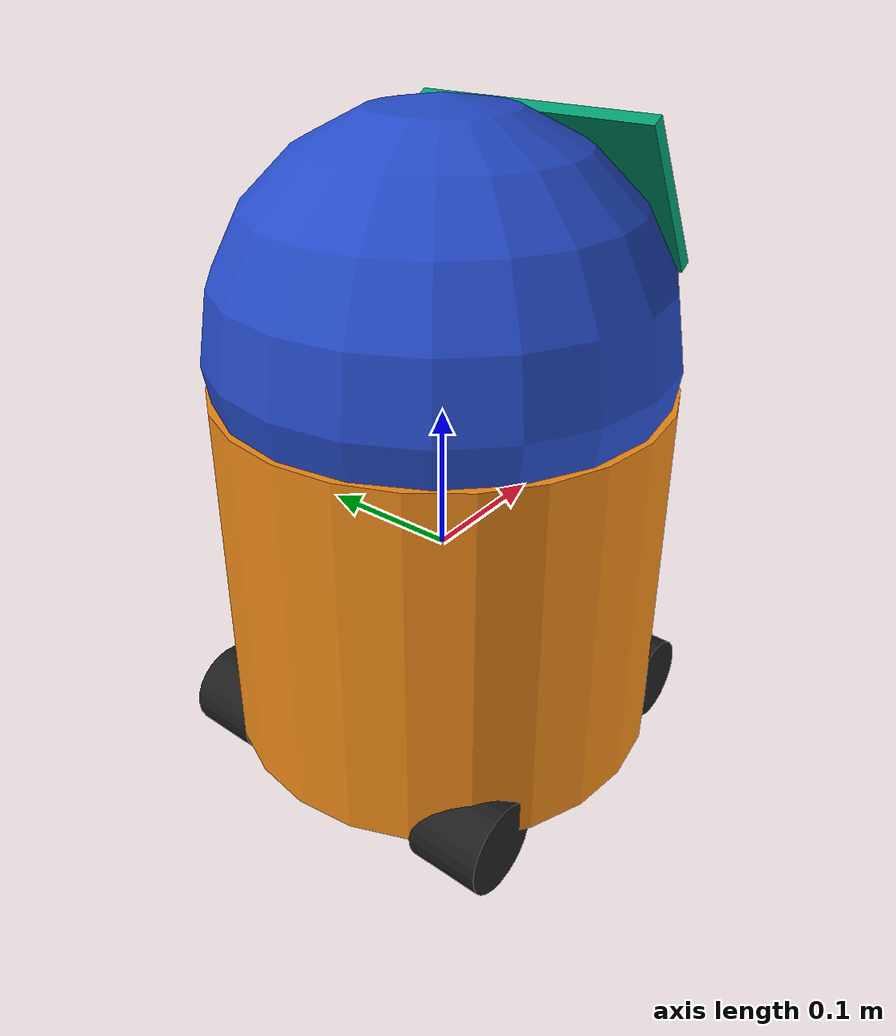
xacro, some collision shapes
<?xml version="1.0"?>
<robot xmlns:xacro="http://www.ros.org/wiki/xacro" name="mbot">
<xacro:property name="base_radius" value=".15" />
<xacro:property name="base_length" value=".25" />
<xacro:property name="screen_length" value=".18" />
<xacro:property name="screen_width" value=".12" />
<xacro:property name="screen_thickness" value=".01" />
<xacro:property name="wheel_length" value=".05" />
<xacro:property name="wheel_radius" value=".03" />
<xacro:property name="wheel_mass" value="0.5" />
<xacro:property name="screen_mass" value="0.2" />
<xacro:property name="base_mass" value="2" />
<xacro:property name="head_mass" value="1" />
<xacro:property name="inertia_head" value="0.018" />
<xacro:property name="inertia_base" value="0.2364" />
<xacro:property name="inertia_wheels" value="0.0002" />
<xacro:property name="camera_link" value="0.025" />
<xacro:property name="imu_link" value="0.025" />
<xacro:property name="hand_length" value="0.2" />
<xacro:property name="hand_thickness" value="0.1" />
<xacro:property name="hand_mass" value="0.05" />

  <link name="base_link">
    <visual>
      <geometry>
        <cylinder length="${base_length}" radius="${base_radius}"/>
      </geometry>
    </visual>
    <collision>
      <geometry>
        <cylinder length="${base_length}" radius="${base_radius}"/>
      </geometry>
    </collision>
    <inertial>
      <mass value="${base_mass}"/>
      <inertia ixx="${inertia_base}" ixy="0.0" ixz="0.0" iyy="${inertia_base}" iyz="0.0" izz="${inertia_base}"/>
    </inertial>
  </link>

  <gazebo>
    <plugin name="ground_truth" filename="libgazebo_ros_p3d.so">
      <alwaysOn>true</alwaysOn>
      <updateRate>50.0</updateRate>
      <bodyName>base_link</bodyName>
      <topicName>ground_truth/state</topicName>
      <gaussianNoise>0.00</gaussianNoise>
      <frameName>map</frameName>
      <xyzOffsets>0 0 0</xyzOffsets>
      <rpyOffsets>0 0 0</rpyOffsets>
    </plugin>
  </gazebo>

  <link name="head">
    <visual>
      <geometry>
        <sphere radius="${base_radius}"/>
      </geometry>
    </visual>
    <collision>
      <geometry>
        <sphere radius="${base_radius}"/>
      </geometry>
    </collision>
    <inertial>
      <mass value="${head_mass}"/>
      <inertia ixx="${inertia_head}" ixy="0.0" ixz="0.0" iyy="${inertia_head}" iyz="0.0" izz="${inertia_head}"/>
    </inertial>
  </link>

  <joint name="head_swivel" type="fixed">
    <parent link="base_link"/>
    <child link="head"/>
    <origin xyz="0 0 0.15"/>
    <axis xyz="0 0 1" />
  </joint>

  <link name="box">
    <visual>
      <geometry>
        <box size="${screen_length} ${screen_thickness} ${screen_width}"/>
      </geometry>
      <origin rpy="-0.5235 0 1.57" xyz="0 0 0"/>
    </visual>
    <collision>
      <geometry>
        <box size="${screen_length} ${screen_thickness} ${screen_width}"/>
      </geometry>
    </collision>
    <inertial>
      <mass value="${screen_mass}"/>
      <inertia ixx="0.00000" ixy="0.0" ixz="0.0" iyy="0.00000" iyz="0.0" izz="0.00000"/>
    </inertial>
  </link>

  <joint name="tobox" type="fixed">
    <parent link="head"/>
    <child link="box"/>
    <origin xyz="0.12 0 0.08"/>
  </joint>

  <link name="right_front_wheel">
    <visual>
      <geometry>
        <cylinder length="${wheel_length}" radius="${wheel_radius}"/>
      </geometry>
    </visual>
    <collision>
      <geometry>
        <cylinder length="${wheel_length}" radius="${wheel_radius}"/>
      </geometry>
    </collision>
    <inertial>
      <mass value="${wheel_mass}"/>
      <inertia ixx="${inertia_wheels}" ixy="0.0" ixz="0.0" iyy="${inertia_wheels}" iyz="0.0" izz="${inertia_wheels}"/>
    </inertial>
  </link>

  <joint name="right_front_wheel_joint" type="continuous">
    <parent link="base_link"/>
    <child link="right_front_wheel"/>
    <axis xyz="0 0 1" />
    <origin rpy="-1.57 0 0" xyz="0.1 -0.1 -0.125"/>
  </joint>

  <link name="right_back_wheel">
    <visual>
      <geometry>
        <cylinder length="${wheel_length}" radius="${wheel_radius}"/>
      </geometry>
    </visual>
    <collision>
      <geometry>
        <cylinder length="${wheel_length}" radius="${wheel_radius}"/>
      </geometry>
    </collision>
    <inertial>
      <mass value="${wheel_mass}"/>
      <inertia ixx="${inertia_wheels}" ixy="0.0" ixz="0.0" iyy="${inertia_wheels}" iyz="0.0" izz="${inertia_wheels}"/>
    </inertial>
  </link>

  <joint name="right_back_wheel_joint" type="continuous">
    <parent link="base_link"/>
    <child link="right_back_wheel"/>
    <origin rpy="-1.57 0 0" xyz="-0.1 -0.1 -0.125"/>
    <axis xyz="0 0 1" />
  </joint>

  <link name="left_front_wheel">
    <visual>
      <geometry>
        <cylinder length="${wheel_length}" radius="${wheel_radius}"/>
      </geometry>
    </visual>
    <collision>
      <geometry>
        <cylinder length="${wheel_length}" radius="${wheel_radius}"/>
      </geometry>
    </collision>
    <inertial>
      <mass value="${wheel_mass}"/>
      <inertia ixx="${inertia_wheels}" ixy="0.0" ixz="0.0" iyy="${inertia_wheels}" iyz="0.0" izz="${inertia_wheels}"/>
    </inertial>
  </link>

  <joint name="left_front_wheel_joint" type="continuous">
    <parent link="base_link"/>
    <child link="left_front_wheel"/>
    <origin rpy="-1.57 0 0" xyz="0.1 0.1 -0.125"/>
    <axis xyz="0 0 1" />
  </joint>

  <link name="left_back_wheel">
    <visual>
      <geometry>
        <cylinder length="${wheel_length}" radius="${wheel_radius}"/>
      </geometry>
    </visual>
    <collision>
      <geometry>
        <cylinder length="${wheel_length}" radius="${wheel_radius}"/>
      </geometry>
    </collision>
    <inertial>
      <mass value="${wheel_mass}"/>
      <inertia ixx="${inertia_wheels}" ixy="0.0" ixz="0.0" iyy="${inertia_wheels}" iyz="0.0" izz="${inertia_wheels}"/>
    </inertial>
  </link>

  <joint name="left_back_wheel_joint" type="continuous">
    <parent link="base_link"/>
    <child link="left_back_wheel"/>
    <origin rpy="-1.57 0 0" xyz="-0.1 0.1 -0.125"/>
    <axis xyz="0 0 1" />
  </joint>

  <!-- Hokuyo Laser -->
  <link name="hokuyo_link">
    <collision>
      <origin xyz="0 0 0" rpy="0 0 0"/>
      <geometry>
    <box size="0.1 0.1 0.1"/>
      </geometry>
    </collision>

    <visual>
      <origin xyz="0 0 0" rpy="0 0 0"/>
      <geometry>
        <mesh filename="package://mbot_description/meshes/hokuyo.dae"/>
      </geometry>
    </visual>

    <inertial>
      <mass value="1e-5" />
      <origin xyz="0 0 0" rpy="0 0 0"/>
      <inertia ixx="1e-6" ixy="0" ixz="0" iyy="1e-6" iyz="0" izz="1e-6" />
    </inertial>
  </link>

  <joint name="hokuyo_joint" type="fixed">
    <axis xyz="0 0 1" />
    <origin xyz="0.15 0 -0.15" rpy="0 0 0"/>
    <parent link="head"/>
    <child link="hokuyo_link"/>
  </joint>

  <!-- hokuyo -->
  <gazebo reference="hokuyo_link">
    <sensor type="ray" name="head_hokuyo_sensor">
      <pose>0 0 0 0 0 0</pose>
      <visualize>true</visualize>
      <update_rate>20</update_rate>
      <ray>
        <scan>
          <horizontal>
            <samples>720</samples>
            <resolution>1</resolution>
            <min_angle>1.57</min_angle>
            <max_angle>-1.57</max_angle>
          </horizontal>
        </scan>
        <range>
          <min>0.1</min>
          <max>5.0</max>
          <resolution>0.1</resolution>
        </range>
        <noise>
          <type>gaussian</type>
          <mean>0.0</mean>
          <stddev>0.01</stddev>
        </noise>
      </ray>
      <plugin name="gazebo_ros_head_hokuyo_controller" filename="libgazebo_ros_laser.so">
        <topicName>/mbot/laser/scan</topicName>
        <frameName>hokuyo_link</frameName>
      </plugin>
    </sensor>
  </gazebo>

  <!-- Camera -->
  <link name="camera_link">
    <collision>
      <origin xyz="0 0 0" rpy="0 0 0"/>
      <geometry>
    <box size="${camera_link} ${camera_link} ${camera_link}"/>
      </geometry>
    </collision>

    <visual>
      <origin xyz="0 0 0" rpy="0 0 0"/>
      <geometry>
    <box size="${camera_link} ${camera_link} ${camera_link}"/>
      </geometry>
      <material name="red"/>
    </visual>

    <inertial>
      <mass value="1e-5" />
      <origin xyz="0 0 0" rpy="0 0 0"/>
      <inertia ixx="1e-6" ixy="0" ixz="0" iyy="1e-6" iyz="0" izz="1e-6" />
    </inertial>
  </link>

  <joint name="camera_joint" type="fixed">
    <origin xyz="0.15 0.0 -0.05" rpy="0 0 0"/>
    <axis xyz="0 0 1" />
    <parent link="head"/>
    <child link="camera_link"/>
  </joint>

  <!-- camera -->
  <gazebo reference="camera_link">

    <sensor type="depth" name="depth_camera">
      <update_rate>20</update_rate>
      <camera>
        <horizontal_fov>1.047198</horizontal_fov>
        <image>
          <width>640</width>
          <height>480</height>
          <format>R8G8B8</format>
        </image>
        <clip>
          <near>0.05</near>
          <far>3</far>
        </clip>
      </camera>

      <plugin name="camera_plugin" filename="libgazebo_ros_openni_kinect.so">
        <baseline>0.2</baseline>
        <alwaysOn>true</alwaysOn>
        <updateRate>0.0</updateRate>
        <cameraName>/camera_ir</cameraName>
        <imageTopicName>/camera/depth/image_raw</imageTopicName>
        <cameraInfoTopicName>/camera/depth/info</cameraInfoTopicName>
        <depthImageTopicName>/camera/depth/image_depth</depthImageTopicName>
        <depthImageInfoTopicName>/camera/depth/info_depth</depthImageInfoTopicName>
        <pointCloudTopicName>/camera/depth/points</pointCloudTopicName>
        <frameName>camera_link</frameName>
        <pointCloudCutoff>0.05</pointCloudCutoff>
        <distortionK1>0</distortionK1>
        <distortionK2>0</distortionK2>
        <distortionK3>0</distortionK3>
        <distortionT1>0</distortionT1>
        <distortionT2>0</distortionT2>
        <CxPrime>0</CxPrime>
        <Cx>0</Cx>
        <Cy>0</Cy>
        <focalLength>0</focalLength>
        <hackBaseline>0</hackBaseline>
      </plugin>
    </sensor>

    <sensor type="camera" name="rgb_camera">
      <update_rate>20.0</update_rate>
      <camera>
        <horizontal_fov>1.3962634</horizontal_fov>
        <image>
          <width>640</width>
          <height>360</height>
          <format>R8G8B8</format>
        </image>
        <clip>
          <near>0.02</near>
          <far>300</far>
        </clip>
        <noise>
          <type>gaussian</type>
          <mean>0.0</mean>
          <stddev>0.007</stddev>
        </noise>
      </camera>
      <plugin name="camera_controller" filename="libgazebo_ros_camera.so">
        <alwaysOn>true</alwaysOn>
        <updateRate>0.0</updateRate>
        <cameraName>/camera_rgb</cameraName>
        <imageTopicName>/camera/rgb/image_raw</imageTopicName>
        <cameraInfoTopicName>/camera/rgb/info</cameraInfoTopicName>
        <frameName>camera_link</frameName>
        <hackBaseline>0.07</hackBaseline>
        <distortionK1>0.0</distortionK1>
        <distortionK2>0.0</distortionK2>
        <distortionK3>0.0</distortionK3>
        <distortionT1>0.0</distortionT1>
        <distortionT2>0.0</distortionT2>
      </plugin>
    </sensor>
  </gazebo>

  <!-- IMU -->
  <link name="imu_link">
    <collision>
      <origin xyz="0 0 0" rpy="0 0 0"/>
      <geometry>
    <box size="${imu_link} ${imu_link} ${imu_link}"/>
      </geometry>
    </collision>

    <visual>
      <origin xyz="0 0 0" rpy="0 0 0"/>
      <geometry>
    <box size="${imu_link} ${imu_link} ${imu_link}"/>
      </geometry>
    </visual>

    <inertial>
      <mass value="1e-5" />
      <origin xyz="0 0 0" rpy="0 0 0"/>
      <inertia ixx="1e-6" ixy="0" ixz="0" iyy="1e-6" iyz="0" izz="1e-6" />
    </inertial>
  </link>

  <joint name="imu_joint" type="fixed">
    <origin xyz="0 0 0"/>
    <parent link="base_link"/>
    <child link="imu_link"/>
  </joint>

  <gazebo>
    <plugin name="imu_controller" filename="libgazebo_ros_imu.so">
      <alwaysOn>true</alwaysOn>
      <updateRate>50.0</updateRate>
      <robotNamespace>mbot</robotNamespace>
      <bodyName>imu_link</bodyName>
      <topicName>imu_data</topicName>
      <gaussianNoise>0.0001</gaussianNoise>
      <xyzOffsets>0 0 0</xyzOffsets>
      <rpyOffsets>0 0 0</rpyOffsets>
      <position name="imu_position"/>
    </plugin>
  </gazebo>

  <!-- To model gaussian noise used this forked gazebo plugin https://github.com/Lakshadeep/gazebo_ros_pkgs -->
  <gazebo>
    <plugin name="skid_steer_drive_controller" filename="libgazebo_ros_skid_steer_drive.so">
      <updateRate>50.0</updateRate>
      <robotNamespace>/</robotNamespace>
      <leftFrontJoint>left_front_wheel_joint</leftFrontJoint>
      <rightFrontJoint>right_front_wheel_joint</rightFrontJoint>
      <leftRearJoint>left_back_wheel_joint</leftRearJoint>
      <rightRearJoint>right_back_wheel_joint</rightRearJoint>
      <wheelSeparation>0.2</wheelSeparation>
      <wheelDiameter>0.035</wheelDiameter>
      <robotBaseFrame>base_link</robotBaseFrame>
      <torque>5</torque>
      <commandTopic>/cmd_vel</commandTopic>
      <odometryTopic>/odom</odometryTopic>
      <odometryTopic>/mbot/gt</odometryTopic>
      <odometryFrame>odom</odometryFrame>
      <groundTruthFrame>gt</groundTruthFrame>
      <childFrame>base_link</childFrame>
      <broadcastTF>true</broadcastTF>
      <gaussianNoise>0.005</gaussianNoise>
    </plugin>
  </gazebo>

  <gazebo reference="base_link">
    <material>Gazebo/Orange</material>
  </gazebo>

  <gazebo reference="head">
    <material>Gazebo/Blue</material>
  </gazebo>

  <gazebo reference="right_front_wheel">
    <material>Gazebo/Black</material>
  </gazebo>

  <gazebo reference="right_back_wheel">
    <material>Gazebo/Black</material>
  </gazebo>

  <gazebo reference="left_front_wheel">
    <material>Gazebo/Black</material>
  </gazebo>

  <gazebo reference="left_back_wheel">
    <material>Gazebo/Black</material>
  </gazebo>

  <gazebo reference="hand_right">
    <material>Gazebo/Yellow</material>
  </gazebo>

  <gazebo reference="hand_left">
    <material>Gazebo/Yellow</material>
  </gazebo>

  <gazebo>
    <plugin name="gazebo_ros_control" filename="libgazebo_ros_control.so">
      <robotNamespace>/mbot</robotNamespace>
    </plugin>
  </gazebo>

</robot>
